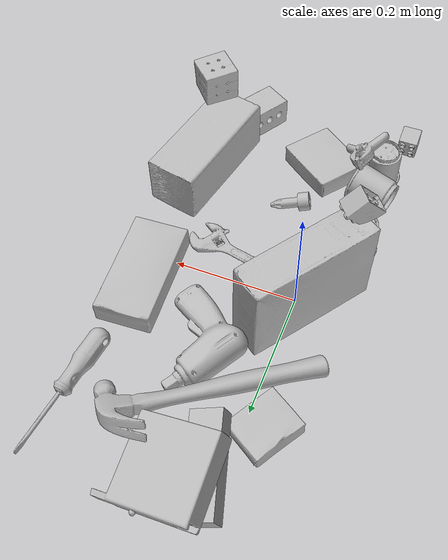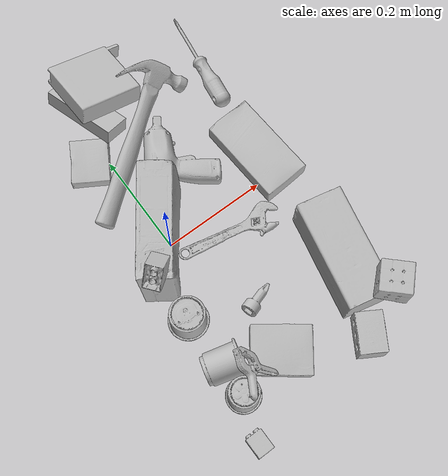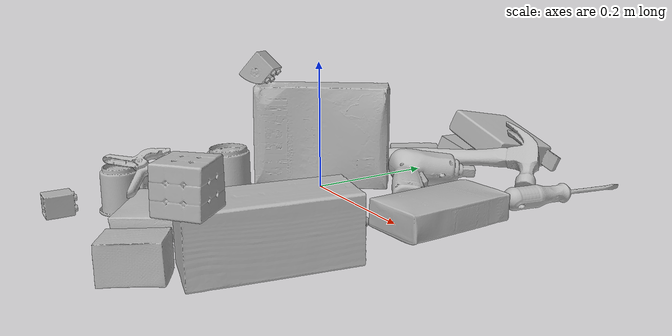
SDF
<sdf version="1.4">
  <world name="default">
    <light name="light1" type="point">
      <pose>0 0 1 0 0 0</pose>
      <diffuse>3 3 3 1</diffuse>
      <specular>3 3 3 1</specular>
    </light>
    <light name="light2" type="point">
      <pose>0 0.5 2 0 0 0</pose>
      <diffuse>1 1 1 1</diffuse>
      <specular>1 1 1 1</specular>
    </light>
    <light name="light3" type="point">
      <pose>0 0.5 2 0 0 0</pose>
      <diffuse>3 3 3 1</diffuse>
      <specular>3 3 3 1</specular>
    </light>
    <scene>
      <ambient>0.7 0.7 0.7</ambient>
    </scene>
    <model name="box21">
      <link name="link_box21">
        <collision name="default">
          <geometry>
            <mesh>
              <uri>model://cracker_box/collision_meshes/collision.obj</uri>
              <scale>1.0 1.0 1.0</scale>
            </mesh>
          </geometry>
          <surface>
            <friction>
              <ode>
                <mu>0.5</mu>
                <mu2>0.5</mu2>
              </ode>
            </friction>
          <contact>
        <ode>
            <max_vel>0</max_vel>
            <min_depth>0.0001</min_depth>
            <kp>1e8</kp>
        </ode>
    </contact></surface>
        </collision>
        <visual name="default">
          <geometry>
            <mesh>
              <uri>model://cracker_box/visual_meshes/visual.dae</uri>
              <scale>1.0 1.0 1.0</scale>
            </mesh>
          </geometry>
        </visual>
        <inertial>
          <mass>2.732837677001953</mass>
          <pose>0.000946416228543967 0.0002543424488976598 -0.0017029533628374338 -0.00031620734042352985 -0.011106490532052917 0.002546795466230165</pose>
          <inertia>
            <ixx>0.0069511193</ixx>
            <iyy>0.011477663</iyy>
            <izz>0.01637968</izz>
            <ixy>0</ixy>
            <ixz>0</ixz>
            <iyz>0</iyz>
          </inertia>
        </inertial>
      </link>
      <pose>-0.011102915741503239 0.010695264674723148 0.08175767958164215 1.545232883858926 0.009040200082565265 0.9630754369236946</pose>
    </model>
    <model name="box22">
      <link name="link_box22">
        <collision name="default">
          <geometry>
            <mesh>
              <uri>model://jenga/collision_meshes/collision.obj</uri>
              <scale>1.0 1.0 1.0</scale>
            </mesh>
          </geometry>
          <surface>
            <friction>
              <ode>
                <mu>0.5</mu>
                <mu2>0.5</mu2>
              </ode>
            </friction>
          <contact>
        <ode>
            <max_vel>0</max_vel>
            <min_depth>0.0001</min_depth>
            <kp>1e8</kp>
        </ode>
    </contact></surface>
        </collision>
        <visual name="default">
          <geometry>
            <mesh>
              <uri>model://jenga/visual_meshes/visual.dae</uri>
              <scale>1.0 1.0 1.0</scale>
            </mesh>
          </geometry>
        </visual>
        <inertial>
          <mass>0.1563216596841812</mass>
          <pose>-2.502855807051674e-07 -0.00010250010382151231 -4.0923401684267446e-05 0.0 -7.34215461761844e-07 0.0</pose>
          <inertia>
            <ixx>4.3258e-05</ixx>
            <iyy>0.000293115</iyy>
            <izz>0.0003129252</izz>
            <ixy>0</ixy>
            <ixz>0</ixz>
            <iyz>0</iyz>
          </inertia>
        </inertial>
      </link>
      <pose>0.02250581979751587 0.3041560649871826 0.02981298789381981 0.3404367075014992 0.10165887516076233 1.8641472096451976</pose>
    </model>
    <model name="box23">
      <link name="link_box23">
        <collision name="default">
          <geometry>
            <mesh>
              <uri>model://pudding_box/collision_meshes/collision.obj</uri>
              <scale>1.0 1.0 1.0</scale>
            </mesh>
          </geometry>
          <surface>
            <friction>
              <ode>
                <mu>0.5</mu>
                <mu2>0.5</mu2>
              </ode>
            </friction>
          <contact>
        <ode>
            <max_vel>0</max_vel>
            <min_depth>0.0001</min_depth>
            <kp>1e8</kp>
        </ode>
    </contact></surface>
        </collision>
        <visual name="default">
          <geometry>
            <mesh>
              <uri>model://pudding_box/visual_meshes/visual.dae</uri>
              <scale>1.0 1.0 1.0</scale>
            </mesh>
          </geometry>
        </visual>
        <inertial>
          <mass>0.32993465662002563</mass>
          <pose>0.0004894821904599667 0.0008067885064519942 -0.0005188827635720372 0.005213102236317791 -0.0066038015122011 0.020079823288174207</pose>
          <inertia>
            <ixx>0.00037297411</ixx>
            <iyy>0.00025093966</iyy>
            <izz>0.0005507938</izz>
            <ixy>0</ixy>
            <ixz>0</ixz>
            <iyz>0</iyz>
          </inertia>
        </inertial>
      </link>
      <pose>0.04226204380393028 -0.2751697897911072 0.019725807011127472 0.022348941394970095 -0.011390715791465549 0.9328384050957185</pose>
    </model>
    <model name="cup1">
      <link name="link_cup1">
        <collision name="default">
          <geometry>
            <mesh>
              <uri>model://c_cups/collision_meshes/collision.obj</uri>
              <scale>1.0 1.0 1.0</scale>
            </mesh>
          </geometry>
          <surface>
            <friction>
              <ode>
                <mu>0.5</mu>
                <mu2>0.5</mu2>
              </ode>
            </friction>
          <contact>
        <ode>
            <max_vel>0</max_vel>
            <min_depth>0.0001</min_depth>
            <kp>1e8</kp>
        </ode>
    </contact></surface>
        </collision>
        <visual name="default">
          <geometry>
            <mesh>
              <uri>model://c_cups/visual_meshes/visual.dae</uri>
              <scale>1.0 1.0 1.0</scale>
            </mesh>
          </geometry>
        </visual>
        <inertial>
          <mass>0.05159630998969078</mass>
          <pose>0.0007237254758365452 0.0020153908990323544 -0.001275097718462348 0.3021575981944983 0.01346171900925468 -0.08771841488334552</pose>
          <inertia>
            <ixx>3.8371487e-05</ixx>
            <iyy>3.7693397e-05</iyy>
            <izz>3.3934528e-05</izz>
            <ixy>0</ixy>
            <ixz>0</ixz>
            <iyz>0</iyz>
          </inertia>
        </inertial>
      </link>
      <pose>-0.05593603476881981 -0.29620540142059326 0.033457882702350616 3.1415830281350337 -9.392089964580779e-06 2.0225346953199024</pose>
    </model>
    <model name="cup2">
      <link name="link_cup2">
        <collision name="default">
          <geometry>
            <mesh>
              <uri>model://d_cups/collision_meshes/collision.obj</uri>
              <scale>1.0 1.0 1.0</scale>
            </mesh>
          </geometry>
          <surface>
            <friction>
              <ode>
                <mu>0.5</mu>
                <mu2>0.5</mu2>
              </ode>
            </friction>
          <contact>
        <ode>
            <max_vel>0</max_vel>
            <min_depth>0.0001</min_depth>
            <kp>1e8</kp>
        </ode>
    </contact></surface>
        </collision>
        <visual name="default">
          <geometry>
            <mesh>
              <uri>model://d_cups/visual_meshes/visual.dae</uri>
              <scale>1.0 1.0 1.0</scale>
            </mesh>
          </geometry>
        </visual>
        <inertial>
          <mass>0.029099034145474434</mass>
          <pose>0.0008068051538430154 0.0019117402844130993 -0.0022666510194540024 0.24013101341738077 -0.2470893725106806 0.5942204262094062</pose>
          <inertia>
            <ixx>2.436274e-05</ixx>
            <iyy>2.429223e-05</iyy>
            <izz>2.2052422e-05</izz>
            <ixy>0</ixy>
            <ixz>0</ixz>
            <iyz>0</iyz>
          </inertia>
        </inertial>
      </link>
      <pose>-0.05509980767965317 -0.234330952167511 0.03253265097737312 -0.9900363375341856 -1.406342980730604 -2.4089865392135503</pose>
    </model>
    <model name="box11">
      <link name="link_box11">
        <collision name="default">
          <geometry>
            <mesh>
              <uri>model://sugar_box/collision_meshes/collision.obj</uri>
              <scale>1.0 1.0 1.0</scale>
            </mesh>
          </geometry>
          <surface>
            <friction>
              <ode>
                <mu>0.5</mu>
                <mu2>0.5</mu2>
              </ode>
            </friction>
          <contact>
        <ode>
            <max_vel>0</max_vel>
            <min_depth>0.0001</min_depth>
            <kp>1e8</kp>
        </ode>
    </contact></surface>
        </collision>
        <visual name="default">
          <geometry>
            <mesh>
              <uri>model://sugar_box/visual_meshes/visual.dae</uri>
              <scale>1.0 1.0 1.0</scale>
            </mesh>
          </geometry>
        </visual>
        <inertial>
          <mass>0.6083751916885376</mass>
          <pose>0.0010343727190047503 3.849109634757042e-05 -0.00036364805418998003 -0.00040462662026216373 0.00105066363904409 0.002615379021562279</pose>
          <inertia>
            <ixx>0.0005068966</ixx>
            <iyy>0.0016383935</iyy>
            <izz>0.0019613528</izz>
            <ixy>0</ixy>
            <ixz>0</ixz>
            <iyz>0</iyz>
          </inertia>
        </inertial>
      </link>
      <pose>0.23477113246917725 0.05034107714891434 0.022798605263233185 0.0007758396579964761 -0.02343345518566534 -1.5157554476218424</pose>
    </model>
    <model name="box12">
      <link name="link_box12">
        <collision name="default">
          <geometry>
            <mesh>
              <uri>model://wood_block/collision_meshes/collision.obj</uri>
              <scale>1.0 1.0 1.0</scale>
            </mesh>
          </geometry>
          <surface>
            <friction>
              <ode>
                <mu>0.5</mu>
                <mu2>0.5</mu2>
              </ode>
            </friction>
          <contact>
        <ode>
            <max_vel>0</max_vel>
            <min_depth>0.0001</min_depth>
            <kp>1e8</kp>
        </ode>
    </contact></surface>
        </collision>
        <visual name="default">
          <geometry>
            <mesh>
              <uri>model://wood_block/visual_meshes/visual.dae</uri>
              <scale>1.0 1.0 1.0</scale>
            </mesh>
          </geometry>
        </visual>
        <inertial>
          <mass>1.904224157333374</mass>
          <pose>-5.813315510749817e-06 -0.000570809468626976 0.0002640858292579651 -0.05220878944738684 -0.005192694452018099 -0.006861378422653873</pose>
          <inertia>
            <ixx>0.00254814</ixx>
            <iyy>0.008049577</iyy>
            <izz>0.008019466</izz>
            <ixy>0</ixy>
            <ixz>0</ixz>
            <iyz>0</iyz>
          </inertia>
        </inertial>
      </link>
      <pose>0.23209883272647858 -0.20299550890922546 0.045616697520017624 -3.1408682881213656 -0.005741720329245712 1.3641308559048748</pose>
    </model>
    <model name="box13">
      <link name="link_box13">
        <collision name="default">
          <geometry>
            <mesh>
              <uri>model://gelatin_box/collision_meshes/collision.obj</uri>
              <scale>1.0 1.0 1.0</scale>
            </mesh>
          </geometry>
          <surface>
            <friction>
              <ode>
                <mu>0.5</mu>
                <mu2>0.5</mu2>
              </ode>
            </friction>
          <contact>
        <ode>
            <max_vel>0</max_vel>
            <min_depth>0.0001</min_depth>
            <kp>1e8</kp>
        </ode>
    </contact></surface>
        </collision>
        <visual name="default">
          <geometry>
            <mesh>
              <uri>model://gelatin_box/visual_meshes/visual.dae</uri>
              <scale>1.0 1.0 1.0</scale>
            </mesh>
          </geometry>
        </visual>
        <inertial>
          <mass>0.15982484817504883</mass>
          <pose>0.0004319618456065655 0.00011156871187267825 -0.0003640321083366871 -0.001050372093012012 -0.00475581868936722 0.016440559471878533</pose>
          <inertia>
            <ixx>0.000112823305</ixx>
            <iyy>8.0589096e-05</iyy>
            <izz>0.0001717422</izz>
            <ixy>0</ixy>
            <ixz>0</ixz>
            <iyz>0</iyz>
          </inertia>
        </inertial>
      </link>
      <pose>-0.02954789809882641 0.21790096163749695 0.015167764388024807 0.0056042251510845745 -0.007202263224836135 2.594011987126485</pose>
    </model>
    <model name="box14">
      <link name="link_box14">
        <collision name="default">
          <geometry>
            <mesh>
              <uri>model://rubiks_cube/collision_meshes/collision.obj</uri>
              <scale>1.0 1.0 1.0</scale>
            </mesh>
          </geometry>
          <surface>
            <friction>
              <ode>
                <mu>0.5</mu>
                <mu2>0.5</mu2>
              </ode>
            </friction>
          <contact>
        <ode>
            <max_vel>0</max_vel>
            <min_depth>0.0001</min_depth>
            <kp>1e8</kp>
        </ode>
    </contact></surface>
        </collision>
        <visual name="default">
          <geometry>
            <mesh>
              <uri>model://rubiks_cube/visual_meshes/visual.dae</uri>
              <scale>1.0 1.0 1.0</scale>
            </mesh>
          </geometry>
        </visual>
        <inertial>
          <mass>0.19606205821037292</mass>
          <pose>2.6721043468569405e-05 5.256967051536776e-05 -7.264316536748083e-06 -0.05467227514375443 -0.09814085307594407 -0.03445353526761094</pose>
          <inertia>
            <ixx>0.00010833746</ixx>
            <iyy>0.000107832224</iyy>
            <izz>0.00010923522</izz>
            <ixy>0</ixy>
            <ixz>0</ixz>
            <iyz>0</iyz>
          </inertia>
        </inertial>
      </link>
      <pose>0.25133317708969116 -0.3025261461734772 0.1196933463215828 -3.1335893262868812 0.009978387979765739 2.3291570799572012</pose>
    </model>
    <model name="cup15">
      <link name="link_cup15">
        <collision name="default">
          <geometry>
            <mesh>
              <uri>model://e_cups/collision_meshes/collision.obj</uri>
              <scale>1.0 1.0 1.0</scale>
            </mesh>
          </geometry>
          <surface>
            <friction>
              <ode>
                <mu>0.5</mu>
                <mu2>0.5</mu2>
              </ode>
            </friction>
          <contact>
        <ode>
            <max_vel>0</max_vel>
            <min_depth>0.0001</min_depth>
            <kp>1e8</kp>
        </ode>
    </contact></surface>
        </collision>
        <visual name="default">
          <geometry>
            <mesh>
              <uri>model://e_cups/visual_meshes/visual.dae</uri>
              <scale>1.0 1.0 1.0</scale>
            </mesh>
          </geometry>
        </visual>
        <inertial>
          <mass>0.09305236488580704</mass>
          <pose>0.0011355740716680884 0.0028797851409763098 -0.003882972989231348 0.6952374393777071 0.08767548394821409 -0.5235242886817723</pose>
          <inertia>
            <ixx>8.204892e-05</ixx>
            <iyy>8.5752865e-05</iyy>
            <izz>7.844823e-05</izz>
            <ixy>0</ixy>
            <ixz>0</ixz>
            <iyz>0</iyz>
          </inertia>
        </inertial>
      </link>
      <pose>-0.05562378093600273 -0.1315932720899582 0.03560688719153404 3.1396967297575262 0.008252859495536976 2.6152293198202368</pose>
    </model>
    <model name="toy1">
      <link name="link_toy1">
        <collision name="default">
          <geometry>
            <mesh>
              <uri>model://foam_brick/collision_meshes/collision.obj</uri>
              <scale>1.0 1.0 1.0</scale>
            </mesh>
          </geometry>
          <surface>
            <friction>
              <ode>
                <mu>0.5</mu>
                <mu2>0.5</mu2>
              </ode>
            </friction>
          <contact>
        <ode>
            <max_vel>0</max_vel>
            <min_depth>0.0001</min_depth>
            <kp>1e8</kp>
        </ode>
    </contact></surface>
        </collision>
        <visual name="default">
          <geometry>
            <mesh>
              <uri>model://foam_brick/visual_meshes/visual.dae</uri>
              <scale>1.0 1.0 1.0</scale>
            </mesh>
          </geometry>
        </visual>
        <inertial>
          <mass>0.27397871017456055</mass>
          <pose>-0.0002522472059354186 0.0003458441060502082 -0.00025321010616607964 -0.2940210021807357 0.01727444677850634 -0.0007449878009638903</pose>
          <inertia>
            <ixx>0.00011967903</ixx>
            <iyy>0.00019107372</iyy>
            <izz>0.00019350204</izz>
            <ixy>0</ixy>
            <ixz>0</ixz>
            <iyz>0</iyz>
          </inertia>
        </inertial>
      </link>
      <pose>0.18311139941215515 -0.3438815474510193 0.026264898478984833 -1.5819347024300694 -0.01272929380270605 1.0285778321553272</pose>
    </model>
    <model name="toy2">
      <link name="link_toy2">
        <collision name="default">
          <geometry>
            <mesh>
              <uri>model://b_toy_airplane/collision_meshes/collision.obj</uri>
              <scale>1.0 1.0 1.0</scale>
            </mesh>
          </geometry>
          <surface>
            <friction>
              <ode>
                <mu>0.5</mu>
                <mu2>0.5</mu2>
              </ode>
            </friction>
          <contact>
        <ode>
            <max_vel>0</max_vel>
            <min_depth>0.0001</min_depth>
            <kp>1e8</kp>
        </ode>
    </contact></surface>
        </collision>
        <visual name="default">
          <geometry>
            <mesh>
              <uri>model://b_toy_airplane/visual_meshes/visual.dae</uri>
              <scale>1.0 1.0 1.0</scale>
            </mesh>
          </geometry>
        </visual>
        <inertial>
          <mass>0.24932990968227386</mass>
          <pose>0.005081362556666136 0.004015582613646984 0.00954306498169899 -0.04001809188182278 -0.04022184417958596 -0.5601502893643007</pose>
          <inertia>
            <ixx>0.0004628856</ixx>
            <iyy>0.00018501986</iyy>
            <izz>0.00057587575</izz>
            <ixy>0</ixy>
            <ixz>0</ixz>
            <iyz>0</iyz>
          </inertia>
        </inertial>
      </link>
      <pose>0.0923028290271759 0.1211504191160202 0.016977906227111816 0.1848830740481161 0.1135048754278756 1.0066802684539742</pose>
    </model>
    <model name="toy3">
      <link name="link_toy3">
        <collision name="default">
          <geometry>
            <mesh>
              <uri>model://f_lego_duplo/collision_meshes/collision.obj</uri>
              <scale>1.0 1.0 1.0</scale>
            </mesh>
          </geometry>
          <surface>
            <friction>
              <ode>
                <mu>0.5</mu>
                <mu2>0.5</mu2>
              </ode>
            </friction>
          <contact>
        <ode>
            <max_vel>0</max_vel>
            <min_depth>0.0001</min_depth>
            <kp>1e8</kp>
        </ode>
    </contact></surface>
        </collision>
        <visual name="default">
          <geometry>
            <mesh>
              <uri>model://f_lego_duplo/visual_meshes/visual.dae</uri>
              <scale>1.0 1.0 1.0</scale>
            </mesh>
          </geometry>
        </visual>
        <inertial>
          <mass>0.027739444747567177</mass>
          <pose>2.369416324654594e-05 0.00013393194240052253 0.0018837876850739121 0.02983859902212722 -0.014425048030447486 -0.6756637170693943</pose>
          <inertia>
            <ixx>5.8614983e-06</ixx>
            <iyy>5.913718e-06</iyy>
            <izz>5.0880294e-06</izz>
            <ixy>0</ixy>
            <ixz>0</ixz>
            <iyz>0</iyz>
          </inertia>
        </inertial>
      </link>
      <pose>-0.0837920531630516 -0.37618160247802734 0.016363853588700294 0.6678054275677248 -1.570739830507428 -2.2306021236176212</pose>
    </model>
    <model name="toy4">
      <link name="link_toy4">
        <collision name="default">
          <geometry>
            <mesh>
              <uri>model://d_toy_airplane/collision_meshes/collision.obj</uri>
              <scale>1.0 1.0 1.0</scale>
            </mesh>
          </geometry>
          <surface>
            <friction>
              <ode>
                <mu>0.5</mu>
                <mu2>0.5</mu2>
              </ode>
            </friction>
          <contact>
        <ode>
            <max_vel>0</max_vel>
            <min_depth>0.0001</min_depth>
            <kp>1e8</kp>
        </ode>
    </contact></surface>
        </collision>
        <visual name="default">
          <geometry>
            <mesh>
              <uri>model://d_toy_airplane/visual_meshes/visual.dae</uri>
              <scale>1.0 1.0 1.0</scale>
            </mesh>
          </geometry>
        </visual>
        <inertial>
          <mass>0.018694162368774414</mass>
          <pose>9.410315396962687e-05 -5.80932610318996e-05 -0.011728095822036266 0.0002670379770250361 0.004678992469792915 0.5194762078456472</pose>
          <inertia>
            <ixx>5.6041463e-06</ixx>
            <iyy>5.6083722e-06</iyy>
            <izz>1.6919282e-06</izz>
            <ixy>0</ixy>
            <ixz>0</ixz>
            <iyz>0</iyz>
          </inertia>
        </inertial>
      </link>
      <pose>0.06882333755493164 -0.17441220581531525 0.011234674602746964 1.79441094851838 -0.19707365202972227 1.8439935252770252</pose>
    </model>
    <model name="toy5">
      <link name="link_toy5">
        <collision name="default">
          <geometry>
            <mesh>
              <uri>model://d_lego_duplo/collision_meshes/collision.obj</uri>
              <scale>1.0 1.0 1.0</scale>
            </mesh>
          </geometry>
          <surface>
            <friction>
              <ode>
                <mu>0.5</mu>
                <mu2>0.5</mu2>
              </ode>
            </friction>
          <contact>
        <ode>
            <max_vel>0</max_vel>
            <min_depth>0.0001</min_depth>
            <kp>1e8</kp>
        </ode>
    </contact></surface>
        </collision>
        <visual name="default">
          <geometry>
            <mesh>
              <uri>model://d_lego_duplo/visual_meshes/visual.dae</uri>
              <scale>1.0 1.0 1.0</scale>
            </mesh>
          </geometry>
        </visual>
        <inertial>
          <mass>0.04560890793800354</mass>
          <pose>0.0028305635787546635 0.00016366137424483895 0.0008589806966483593 0.08010848326521293 -0.38355231288211744 0.0010296590748680565</pose>
          <inertia>
            <ixx>8.829212e-06</ixx>
            <iyy>1.253105e-05</iyy>
            <izz>1.2084434e-05</izz>
            <ixy>0</ixy>
            <ixz>0</ixz>
            <iyz>0</iyz>
          </inertia>
        </inertial>
      </link>
      <pose>-0.06477809697389603 -0.0668981596827507 0.1826389580965042 3.1064346188647165 -0.842945904049374 0.697234707586463</pose>
    </model>
    <model name="toy6">
      <link name="link_toy6">
        <collision name="default">
          <geometry>
            <mesh>
              <uri>model://nine_hole_peg_test/collision_meshes/collision.obj</uri>
              <scale>1.0 1.0 1.0</scale>
            </mesh>
          </geometry>
          <surface>
            <friction>
              <ode>
                <mu>0.5</mu>
                <mu2>0.5</mu2>
              </ode>
            </friction>
          <contact>
        <ode>
            <max_vel>0</max_vel>
            <min_depth>0.0001</min_depth>
            <kp>1e8</kp>
        </ode>
    </contact></surface>
        </collision>
        <visual name="default">
          <geometry>
            <mesh>
              <uri>model://nine_hole_peg_test/visual_meshes/visual.dae</uri>
              <scale>1.0 1.0 1.0</scale>
            </mesh>
          </geometry>
        </visual>
        <inertial>
          <mass>0.9848376512527466</mass>
          <pose>-0.004617386031895876 -0.009647614322602749 2.646068787726108e-05 -0.0014666785927196467 0.0007194180015025765 -0.6342414580933873</pose>
          <inertia>
            <ixx>0.0015399556</ixx>
            <iyy>0.0014378404</iyy>
            <izz>0.0026984566</izz>
            <ixy>0</ixy>
            <ixz>0</ixz>
            <iyz>0</iyz>
          </inertia>
        </inertial>
      </link>
      <pose>0.07141381502151489 0.3366135358810425 0.046160273253917694 -2.842006127501798 0.1952219311516272 1.5829244181177287</pose>
    </model>
    <model name="hardware1">
      <link name="link_hardware1">
        <collision name="default">
          <geometry>
            <mesh>
              <uri>model://hammer/collision_meshes/collision.obj</uri>
              <scale>1.0 1.0 1.0</scale>
            </mesh>
          </geometry>
          <surface>
            <friction>
              <ode>
                <mu>0.5</mu>
                <mu2>0.5</mu2>
              </ode>
            </friction>
          <contact>
        <ode>
            <max_vel>0</max_vel>
            <min_depth>0.0001</min_depth>
            <kp>1e8</kp>
        </ode>
    </contact></surface>
        </collision>
        <visual name="default">
          <geometry>
            <mesh>
              <uri>model://hammer/visual_meshes/visual.dae</uri>
              <scale>1.0 1.0 1.0</scale>
            </mesh>
          </geometry>
        </visual>
        <inertial>
          <mass>0.19812075793743134</mass>
          <pose>0.009415780194103718 -0.011892358772456646 -0.00012350631004665047 0.023155553199567438 -0.004792165144826806 -0.012760319769687977</pose>
          <inertia>
            <ixx>8.4865314e-05</ixx>
            <iyy>0.0022996028</iyy>
            <izz>0.0023654876</izz>
            <ixy>0</ixy>
            <ixz>0</ixz>
            <iyz>0</iyz>
          </inertia>
        </inertial>
      </link>
      <pose>0.0573236346244812 0.2103368639945984 0.03960617631673813 0.5641098849311571 -0.0863188588166088 0.6356651660885891</pose>
    </model>
    <model name="hardware2">
      <link name="link_hardware2">
        <collision name="default">
          <geometry>
            <mesh>
              <uri>model://medium_clamp/collision_meshes/collision.obj</uri>
              <scale>1.0 1.0 1.0</scale>
            </mesh>
          </geometry>
          <surface>
            <friction>
              <ode>
                <mu>0.5</mu>
                <mu2>0.5</mu2>
              </ode>
            </friction>
          <contact>
        <ode>
            <max_vel>0</max_vel>
            <min_depth>0.0001</min_depth>
            <kp>1e8</kp>
        </ode>
    </contact></surface>
        </collision>
        <visual name="default">
          <geometry>
            <mesh>
              <uri>model://medium_clamp/visual_meshes/visual.dae</uri>
              <scale>1.0 1.0 1.0</scale>
            </mesh>
          </geometry>
        </visual>
        <inertial>
          <mass>0.022759946063160896</mass>
          <pose>0.005390991922467947 0.00039532387745566666 -0.0001222159044118598 -0.0012269199415174078 0.0025845019151957355 0.03820777718195871</pose>
          <inertia>
            <ixx>6.200628e-06</ixx>
            <iyy>9.023669e-06</iyy>
            <izz>1.3899154e-05</izz>
            <ixy>0</ixy>
            <ixz>0</ixz>
            <iyz>0</iyz>
          </inertia>
        </inertial>
      </link>
      <pose>-0.023505644872784615 -0.2755322754383087 0.07064861059188843 -2.5442803141097894 -0.2773640992382939 1.6204675955628247</pose>
    </model>
    <model name="hardware3">
      <link name="link_hardware3">
        <collision name="default">
          <geometry>
            <mesh>
              <uri>model://flat_screwdriver/collision_meshes/collision.obj</uri>
              <scale>1.0 1.0 1.0</scale>
            </mesh>
          </geometry>
          <surface>
            <friction>
              <ode>
                <mu>0.5</mu>
                <mu2>0.5</mu2>
              </ode>
            </friction>
          <contact>
        <ode>
            <max_vel>0</max_vel>
            <min_depth>0.0001</min_depth>
            <kp>1e8</kp>
        </ode>
    </contact></surface>
        </collision>
        <visual name="default">
          <geometry>
            <mesh>
              <uri>model://flat_screwdriver/visual_meshes/visual.dae</uri>
              <scale>1.0 1.0 1.0</scale>
            </mesh>
          </geometry>
        </visual>
        <inertial>
          <mass>0.09131896495819092</mass>
          <pose>-0.0489187091588974 -0.0006576800951734185 -0.0006140916375443339 -0.5615616021105532 -0.003233725851923771 0.0069822762955213</pose>
          <inertia>
            <ixx>1.0789267e-05</ixx>
            <iyy>0.00013697217</iyy>
            <izz>0.00013690875</izz>
            <ixy>0</ixy>
            <ixz>0</ixz>
            <iyz>0</iyz>
          </inertia>
        </inertial>
      </link>
      <pose>0.26008206605911255 0.26600247621536255 0.015210812911391258 1.7961465430957606 0.038822397630518236 1.4336859149374752</pose>
    </model>
    <model name="hardware4">
      <link name="link_hardware4">
        <collision name="default">
          <geometry>
            <mesh>
              <uri>model://adjustable_wrench/collision_meshes/collision.obj</uri>
              <scale>1.0 1.0 1.0</scale>
            </mesh>
          </geometry>
          <surface>
            <friction>
              <ode>
                <mu>0.5</mu>
                <mu2>0.5</mu2>
              </ode>
            </friction>
          <contact>
        <ode>
            <max_vel>0</max_vel>
            <min_depth>0.0001</min_depth>
            <kp>1e8</kp>
        </ode>
    </contact></surface>
        </collision>
        <visual name="default">
          <geometry>
            <mesh>
              <uri>model://adjustable_wrench/visual_meshes/visual.dae</uri>
              <scale>1.0 1.0 1.0</scale>
            </mesh>
          </geometry>
        </visual>
        <inertial>
          <mass>0.023054517805576324</mass>
          <pose>0.03740980476140976 -0.0028968877159059048 -0.0011149226920679212 -0.01447335734168526 0.006656027895675122 -0.010954173130845575</pose>
          <inertia>
            <ixx>4.7184403e-06</ixx>
            <iyy>5.5223813e-05</iyy>
            <izz>5.969163e-05</izz>
            <ixy>0</ixy>
            <ixz>0</ixz>
            <iyz>0</iyz>
          </inertia>
        </inertial>
      </link>
      <pose>0.10324519127607346 -0.049022942781448364 0.0046286387369036674 3.098278224789581 -0.01604027839908624 -0.1796487129569936</pose>
    </model>
  <physics type="ode">
      <max_contacts>50</max_contacts>
      <ode>
        <solver>
          <type>quick</type>
          <iters>75</iters>
        </solver>
        <constraints>
          <contact_max_correcting_vel>0</contact_max_correcting_vel>
          <contact_surface_layer>0</contact_surface_layer>
        </constraints>
      </ode>
    </physics></world>
</sdf>
